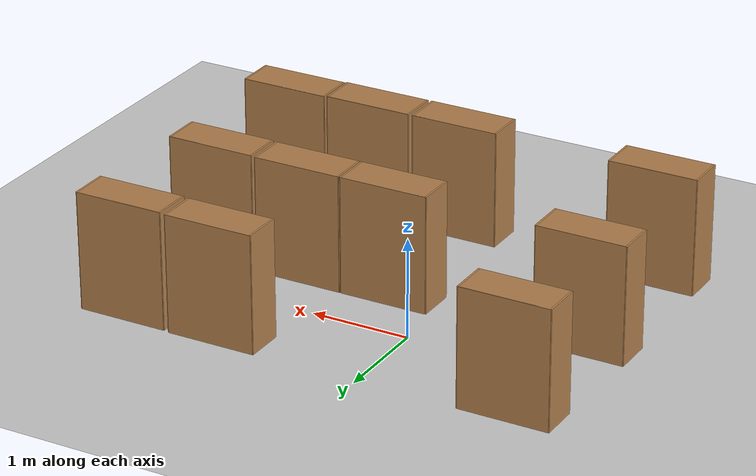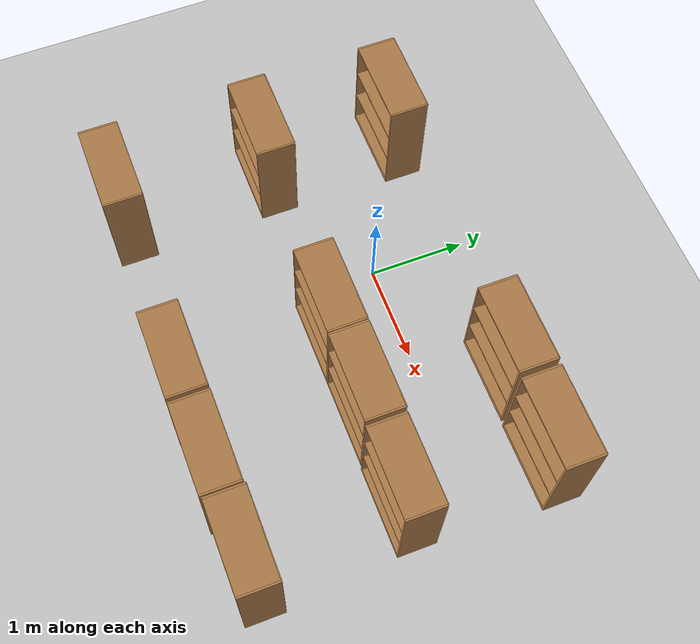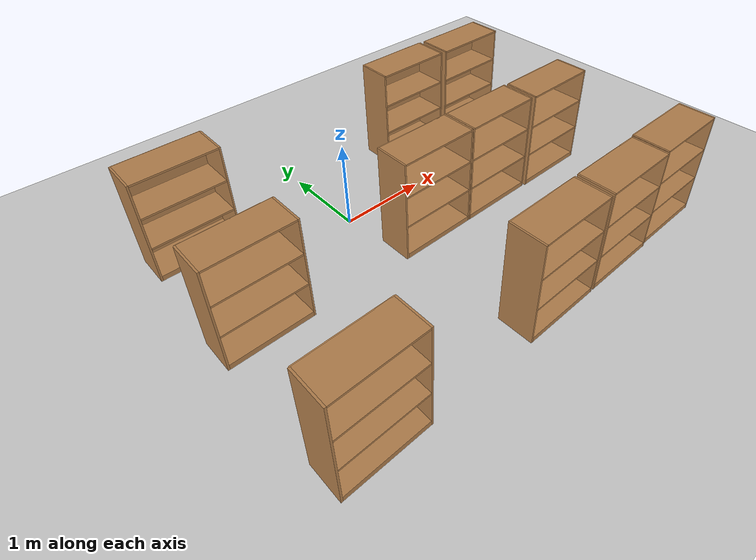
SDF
<sdf version="1.7">
 <world name="default">
  <model name="ground_plane">
   <static>1</static>
   <link name="link">
    <collision name="collision">
     <geometry><plane><normal>0 0 1</normal><size>100 100</size></plane></geometry>
     <surface>
      <contact><collide_bitmask>65535</collide_bitmask></contact>
      <friction><ode><mu>100</mu><mu2>50</mu2></ode></friction>
     </surface>
    </collision>
    <visual name="visual">
     <cast_shadows>0</cast_shadows>
     <geometry><plane><normal>0 0 1</normal><size>100 100</size></plane></geometry>
     <material>
      <script><uri>file://media/materials/scripts/gazebo.material</uri><name>Gazebo/Grey</name></script>
     </material>
    </visual>
   </link>
  </model>
  <model name="bookshelf_13">
   <static>1</static>
   <link name="link">
    <inertial><mass>1</mass></inertial>
    <collision name="back">
     <pose>0 0.005 0.6 0 -0 0</pose>
     <geometry><box><size>0.9 0.01 1.2</size></box></geometry>
    </collision>
    <visual name="visual1">
     <pose>0 0.005 0.6 0 -0 0</pose>
     <geometry><box><size>0.9 0.01 1.2</size></box></geometry>
     <material>
      <script><uri>file://media/materials/scripts/gazebo.material</uri><name>Gazebo/Wood</name></script>
     </material>
    </visual>
    <collision name="left_side">
     <pose>0.45 -0.195 0.6 0 -0 0</pose>
     <geometry><box><size>0.02 0.4 1.2</size></box></geometry>
    </collision>
    <visual name="visual2">
     <pose>0.45 -0.195 0.6 0 -0 0</pose>
     <geometry><box><size>0.02 0.4 1.2</size></box></geometry>
     <material>
      <script><uri>file://media/materials/scripts/gazebo.material</uri><name>Gazebo/Wood</name></script>
     </material>
    </visual>
    <collision name="right_side">
     <pose>-0.45 -0.195 0.6 0 -0 0</pose>
     <geometry><box><size>0.02 0.4 1.2</size></box></geometry>
    </collision>
    <visual name="visual3">
     <pose>-0.45 -0.195 0.6 0 -0 0</pose>
     <geometry><box><size>0.02 0.4 1.2</size></box></geometry>
     <material>
      <script><uri>file://media/materials/scripts/gazebo.material</uri><name>Gazebo/Wood</name></script>
     </material>
    </visual>
    <collision name="bottom">
     <pose>0 -0.195 0.03 0 -0 0</pose>
     <geometry><box><size>0.88 0.4 0.06</size></box></geometry>
    </collision>
    <visual name="visual4">
     <pose>0 -0.195 0.03 0 -0 0</pose>
     <geometry><box><size>0.88 0.4 0.06</size></box></geometry>
     <material>
      <script><uri>file://media/materials/scripts/gazebo.material</uri><name>Gazebo/Wood</name></script>
     </material>
    </visual>
    <collision name="top">
     <pose>0 -0.195 1.19 0 -0 0</pose>
     <geometry><box><size>0.88 0.4 0.02</size></box></geometry>
    </collision>
    <visual name="visual5">
     <pose>0 -0.195 1.19 0 -0 0</pose>
     <geometry><box><size>0.88 0.4 0.02</size></box></geometry>
     <material>
      <script><uri>file://media/materials/scripts/gazebo.material</uri><name>Gazebo/Wood</name></script>
     </material>
    </visual>
    <collision name="low_shelf">
     <pose>0 -0.195 0.43 0 -0 0</pose>
     <geometry><box><size>0.88 0.4 0.02</size></box></geometry>
    </collision>
    <visual name="visual6">
     <pose>0 -0.195 0.43 0 -0 0</pose>
     <geometry><box><size>0.88 0.4 0.02</size></box></geometry>
     <material>
      <script><uri>file://media/materials/scripts/gazebo.material</uri><name>Gazebo/Wood</name></script>
     </material>
    </visual>
    <collision name="high_shelf">
     <pose>0 -0.195 0.8 0 -0 0</pose>
     <geometry><box><size>0.88 0.4 0.02</size></box></geometry>
    </collision>
    <visual name="visual7">
     <pose>0 -0.195 0.8 0 -0 0</pose>
     <geometry><box><size>0.88 0.4 0.02</size></box></geometry>
     <material>
      <script><uri>file://media/materials/scripts/gazebo.material</uri><name>Gazebo/Wood</name></script>
     </material>
    </visual>
   </link>
   <pose>-1.47176 0.953052 0 0 -0 0</pose>
  </model>
  <model name="bookshelf_15">
   <static>1</static>
   <link name="link">
    <inertial><mass>1</mass></inertial>
    <collision name="back">
     <pose>0 0.005 0.6 0 -0 0</pose>
     <geometry><box><size>0.9 0.01 1.2</size></box></geometry>
    </collision>
    <visual name="visual1">
     <pose>0 0.005 0.6 0 -0 0</pose>
     <geometry><box><size>0.9 0.01 1.2</size></box></geometry>
     <material>
      <script><uri>file://media/materials/scripts/gazebo.material</uri><name>Gazebo/Wood</name></script>
     </material>
    </visual>
    <collision name="left_side">
     <pose>0.45 -0.195 0.6 0 -0 0</pose>
     <geometry><box><size>0.02 0.4 1.2</size></box></geometry>
    </collision>
    <visual name="visual2">
     <pose>0.45 -0.195 0.6 0 -0 0</pose>
     <geometry><box><size>0.02 0.4 1.2</size></box></geometry>
     <material>
      <script><uri>file://media/materials/scripts/gazebo.material</uri><name>Gazebo/Wood</name></script>
     </material>
    </visual>
    <collision name="right_side">
     <pose>-0.45 -0.195 0.6 0 -0 0</pose>
     <geometry><box><size>0.02 0.4 1.2</size></box></geometry>
    </collision>
    <visual name="visual3">
     <pose>-0.45 -0.195 0.6 0 -0 0</pose>
     <geometry><box><size>0.02 0.4 1.2</size></box></geometry>
     <material>
      <script><uri>file://media/materials/scripts/gazebo.material</uri><name>Gazebo/Wood</name></script>
     </material>
    </visual>
    <collision name="bottom">
     <pose>0 -0.195 0.03 0 -0 0</pose>
     <geometry><box><size>0.88 0.4 0.06</size></box></geometry>
    </collision>
    <visual name="visual4">
     <pose>0 -0.195 0.03 0 -0 0</pose>
     <geometry><box><size>0.88 0.4 0.06</size></box></geometry>
     <material>
      <script><uri>file://media/materials/scripts/gazebo.material</uri><name>Gazebo/Wood</name></script>
     </material>
    </visual>
    <collision name="top">
     <pose>0 -0.195 1.19 0 -0 0</pose>
     <geometry><box><size>0.88 0.4 0.02</size></box></geometry>
    </collision>
    <visual name="visual5">
     <pose>0 -0.195 1.19 0 -0 0</pose>
     <geometry><box><size>0.88 0.4 0.02</size></box></geometry>
     <material>
      <script><uri>file://media/materials/scripts/gazebo.material</uri><name>Gazebo/Wood</name></script>
     </material>
    </visual>
    <collision name="low_shelf">
     <pose>0 -0.195 0.43 0 -0 0</pose>
     <geometry><box><size>0.88 0.4 0.02</size></box></geometry>
    </collision>
    <visual name="visual6">
     <pose>0 -0.195 0.43 0 -0 0</pose>
     <geometry><box><size>0.88 0.4 0.02</size></box></geometry>
     <material>
      <script><uri>file://media/materials/scripts/gazebo.material</uri><name>Gazebo/Wood</name></script>
     </material>
    </visual>
    <collision name="high_shelf">
     <pose>0 -0.195 0.8 0 -0 0</pose>
     <geometry><box><size>0.88 0.4 0.02</size></box></geometry>
    </collision>
    <visual name="visual7">
     <pose>0 -0.195 0.8 0 -0 0</pose>
     <geometry><box><size>0.88 0.4 0.02</size></box></geometry>
     <material>
      <script><uri>file://media/materials/scripts/gazebo.material</uri><name>Gazebo/Wood</name></script>
     </material>
    </visual>
   </link>
   <pose>1.51844 0.970182 0 0 -0 0</pose>
  </model>
  <model name="bookshelf_16">
   <static>1</static>
   <link name="link">
    <inertial><mass>1</mass></inertial>
    <collision name="back">
     <pose>0 0.005 0.6 0 -0 0</pose>
     <geometry><box><size>0.9 0.01 1.2</size></box></geometry>
    </collision>
    <visual name="visual1">
     <pose>0 0.005 0.6 0 -0 0</pose>
     <geometry><box><size>0.9 0.01 1.2</size></box></geometry>
     <material>
      <script><uri>file://media/materials/scripts/gazebo.material</uri><name>Gazebo/Wood</name></script>
     </material>
    </visual>
    <collision name="left_side">
     <pose>0.45 -0.195 0.6 0 -0 0</pose>
     <geometry><box><size>0.02 0.4 1.2</size></box></geometry>
    </collision>
    <visual name="visual2">
     <pose>0.45 -0.195 0.6 0 -0 0</pose>
     <geometry><box><size>0.02 0.4 1.2</size></box></geometry>
     <material>
      <script><uri>file://media/materials/scripts/gazebo.material</uri><name>Gazebo/Wood</name></script>
     </material>
    </visual>
    <collision name="right_side">
     <pose>-0.45 -0.195 0.6 0 -0 0</pose>
     <geometry><box><size>0.02 0.4 1.2</size></box></geometry>
    </collision>
    <visual name="visual3">
     <pose>-0.45 -0.195 0.6 0 -0 0</pose>
     <geometry><box><size>0.02 0.4 1.2</size></box></geometry>
     <material>
      <script><uri>file://media/materials/scripts/gazebo.material</uri><name>Gazebo/Wood</name></script>
     </material>
    </visual>
    <collision name="bottom">
     <pose>0 -0.195 0.03 0 -0 0</pose>
     <geometry><box><size>0.88 0.4 0.06</size></box></geometry>
    </collision>
    <visual name="visual4">
     <pose>0 -0.195 0.03 0 -0 0</pose>
     <geometry><box><size>0.88 0.4 0.06</size></box></geometry>
     <material>
      <script><uri>file://media/materials/scripts/gazebo.material</uri><name>Gazebo/Wood</name></script>
     </material>
    </visual>
    <collision name="top">
     <pose>0 -0.195 1.19 0 -0 0</pose>
     <geometry><box><size>0.88 0.4 0.02</size></box></geometry>
    </collision>
    <visual name="visual5">
     <pose>0 -0.195 1.19 0 -0 0</pose>
     <geometry><box><size>0.88 0.4 0.02</size></box></geometry>
     <material>
      <script><uri>file://media/materials/scripts/gazebo.material</uri><name>Gazebo/Wood</name></script>
     </material>
    </visual>
    <collision name="low_shelf">
     <pose>0 -0.195 0.43 0 -0 0</pose>
     <geometry><box><size>0.88 0.4 0.02</size></box></geometry>
    </collision>
    <visual name="visual6">
     <pose>0 -0.195 0.43 0 -0 0</pose>
     <geometry><box><size>0.88 0.4 0.02</size></box></geometry>
     <material>
      <script><uri>file://media/materials/scripts/gazebo.material</uri><name>Gazebo/Wood</name></script>
     </material>
    </visual>
    <collision name="high_shelf">
     <pose>0 -0.195 0.8 0 -0 0</pose>
     <geometry><box><size>0.88 0.4 0.02</size></box></geometry>
    </collision>
    <visual name="visual7">
     <pose>0 -0.195 0.8 0 -0 0</pose>
     <geometry><box><size>0.88 0.4 0.02</size></box></geometry>
     <material>
      <script><uri>file://media/materials/scripts/gazebo.material</uri><name>Gazebo/Wood</name></script>
     </material>
    </visual>
   </link>
   <pose>2.48494 0.958079 0 0 -0 0</pose>
  </model>
  <model name="bookshelf_19">
   <static>1</static>
   <link name="link">
    <inertial><mass>1</mass></inertial>
    <collision name="back">
     <pose>0 0.005 0.6 0 -0 0</pose>
     <geometry><box><size>0.9 0.01 1.2</size></box></geometry>
    </collision>
    <visual name="visual1">
     <pose>0 0.005 0.6 0 -0 0</pose>
     <geometry><box><size>0.9 0.01 1.2</size></box></geometry>
     <material>
      <script><uri>file://media/materials/scripts/gazebo.material</uri><name>Gazebo/Wood</name></script>
     </material>
    </visual>
    <collision name="left_side">
     <pose>0.45 -0.195 0.6 0 -0 0</pose>
     <geometry><box><size>0.02 0.4 1.2</size></box></geometry>
    </collision>
    <visual name="visual2">
     <pose>0.45 -0.195 0.6 0 -0 0</pose>
     <geometry><box><size>0.02 0.4 1.2</size></box></geometry>
     <material>
      <script><uri>file://media/materials/scripts/gazebo.material</uri><name>Gazebo/Wood</name></script>
     </material>
    </visual>
    <collision name="right_side">
     <pose>-0.45 -0.195 0.6 0 -0 0</pose>
     <geometry><box><size>0.02 0.4 1.2</size></box></geometry>
    </collision>
    <visual name="visual3">
     <pose>-0.45 -0.195 0.6 0 -0 0</pose>
     <geometry><box><size>0.02 0.4 1.2</size></box></geometry>
     <material>
      <script><uri>file://media/materials/scripts/gazebo.material</uri><name>Gazebo/Wood</name></script>
     </material>
    </visual>
    <collision name="bottom">
     <pose>0 -0.195 0.03 0 -0 0</pose>
     <geometry><box><size>0.88 0.4 0.06</size></box></geometry>
    </collision>
    <visual name="visual4">
     <pose>0 -0.195 0.03 0 -0 0</pose>
     <geometry><box><size>0.88 0.4 0.06</size></box></geometry>
     <material>
      <script><uri>file://media/materials/scripts/gazebo.material</uri><name>Gazebo/Wood</name></script>
     </material>
    </visual>
    <collision name="top">
     <pose>0 -0.195 1.19 0 -0 0</pose>
     <geometry><box><size>0.88 0.4 0.02</size></box></geometry>
    </collision>
    <visual name="visual5">
     <pose>0 -0.195 1.19 0 -0 0</pose>
     <geometry><box><size>0.88 0.4 0.02</size></box></geometry>
     <material>
      <script><uri>file://media/materials/scripts/gazebo.material</uri><name>Gazebo/Wood</name></script>
     </material>
    </visual>
    <collision name="low_shelf">
     <pose>0 -0.195 0.43 0 -0 0</pose>
     <geometry><box><size>0.88 0.4 0.02</size></box></geometry>
    </collision>
    <visual name="visual6">
     <pose>0 -0.195 0.43 0 -0 0</pose>
     <geometry><box><size>0.88 0.4 0.02</size></box></geometry>
     <material>
      <script><uri>file://media/materials/scripts/gazebo.material</uri><name>Gazebo/Wood</name></script>
     </material>
    </visual>
    <collision name="high_shelf">
     <pose>0 -0.195 0.8 0 -0 0</pose>
     <geometry><box><size>0.88 0.4 0.02</size></box></geometry>
    </collision>
    <visual name="visual7">
     <pose>0 -0.195 0.8 0 -0 0</pose>
     <geometry><box><size>0.88 0.4 0.02</size></box></geometry>
     <material>
      <script><uri>file://media/materials/scripts/gazebo.material</uri><name>Gazebo/Wood</name></script>
     </material>
    </visual>
   </link>
   <pose>-1.50921 -0.459183 0 0 -0 0</pose>
  </model>
  <model name="bookshelf_20">
   <static>1</static>
   <link name="link">
    <inertial><mass>1</mass></inertial>
    <collision name="back">
     <pose>0 0.005 0.6 0 -0 0</pose>
     <geometry><box><size>0.9 0.01 1.2</size></box></geometry>
    </collision>
    <visual name="visual1">
     <pose>0 0.005 0.6 0 -0 0</pose>
     <geometry><box><size>0.9 0.01 1.2</size></box></geometry>
     <material>
      <script><uri>file://media/materials/scripts/gazebo.material</uri><name>Gazebo/Wood</name></script>
     </material>
    </visual>
    <collision name="left_side">
     <pose>0.45 -0.195 0.6 0 -0 0</pose>
     <geometry><box><size>0.02 0.4 1.2</size></box></geometry>
    </collision>
    <visual name="visual2">
     <pose>0.45 -0.195 0.6 0 -0 0</pose>
     <geometry><box><size>0.02 0.4 1.2</size></box></geometry>
     <material>
      <script><uri>file://media/materials/scripts/gazebo.material</uri><name>Gazebo/Wood</name></script>
     </material>
    </visual>
    <collision name="right_side">
     <pose>-0.45 -0.195 0.6 0 -0 0</pose>
     <geometry><box><size>0.02 0.4 1.2</size></box></geometry>
    </collision>
    <visual name="visual3">
     <pose>-0.45 -0.195 0.6 0 -0 0</pose>
     <geometry><box><size>0.02 0.4 1.2</size></box></geometry>
     <material>
      <script><uri>file://media/materials/scripts/gazebo.material</uri><name>Gazebo/Wood</name></script>
     </material>
    </visual>
    <collision name="bottom">
     <pose>0 -0.195 0.03 0 -0 0</pose>
     <geometry><box><size>0.88 0.4 0.06</size></box></geometry>
    </collision>
    <visual name="visual4">
     <pose>0 -0.195 0.03 0 -0 0</pose>
     <geometry><box><size>0.88 0.4 0.06</size></box></geometry>
     <material>
      <script><uri>file://media/materials/scripts/gazebo.material</uri><name>Gazebo/Wood</name></script>
     </material>
    </visual>
    <collision name="top">
     <pose>0 -0.195 1.19 0 -0 0</pose>
     <geometry><box><size>0.88 0.4 0.02</size></box></geometry>
    </collision>
    <visual name="visual5">
     <pose>0 -0.195 1.19 0 -0 0</pose>
     <geometry><box><size>0.88 0.4 0.02</size></box></geometry>
     <material>
      <script><uri>file://media/materials/scripts/gazebo.material</uri><name>Gazebo/Wood</name></script>
     </material>
    </visual>
    <collision name="low_shelf">
     <pose>0 -0.195 0.43 0 -0 0</pose>
     <geometry><box><size>0.88 0.4 0.02</size></box></geometry>
    </collision>
    <visual name="visual6">
     <pose>0 -0.195 0.43 0 -0 0</pose>
     <geometry><box><size>0.88 0.4 0.02</size></box></geometry>
     <material>
      <script><uri>file://media/materials/scripts/gazebo.material</uri><name>Gazebo/Wood</name></script>
     </material>
    </visual>
    <collision name="high_shelf">
     <pose>0 -0.195 0.8 0 -0 0</pose>
     <geometry><box><size>0.88 0.4 0.02</size></box></geometry>
    </collision>
    <visual name="visual7">
     <pose>0 -0.195 0.8 0 -0 0</pose>
     <geometry><box><size>0.88 0.4 0.02</size></box></geometry>
     <material>
      <script><uri>file://media/materials/scripts/gazebo.material</uri><name>Gazebo/Wood</name></script>
     </material>
    </visual>
   </link>
   <pose>0.536006 -0.494316 0 0 -0 0</pose>
  </model>
  <model name="bookshelf_21">
   <static>1</static>
   <link name="link">
    <inertial><mass>1</mass></inertial>
    <collision name="back">
     <pose>0 0.005 0.6 0 -0 0</pose>
     <geometry><box><size>0.9 0.01 1.2</size></box></geometry>
    </collision>
    <visual name="visual1">
     <pose>0 0.005 0.6 0 -0 0</pose>
     <geometry><box><size>0.9 0.01 1.2</size></box></geometry>
     <material>
      <script><uri>file://media/materials/scripts/gazebo.material</uri><name>Gazebo/Wood</name></script>
     </material>
    </visual>
    <collision name="left_side">
     <pose>0.45 -0.195 0.6 0 -0 0</pose>
     <geometry><box><size>0.02 0.4 1.2</size></box></geometry>
    </collision>
    <visual name="visual2">
     <pose>0.45 -0.195 0.6 0 -0 0</pose>
     <geometry><box><size>0.02 0.4 1.2</size></box></geometry>
     <material>
      <script><uri>file://media/materials/scripts/gazebo.material</uri><name>Gazebo/Wood</name></script>
     </material>
    </visual>
    <collision name="right_side">
     <pose>-0.45 -0.195 0.6 0 -0 0</pose>
     <geometry><box><size>0.02 0.4 1.2</size></box></geometry>
    </collision>
    <visual name="visual3">
     <pose>-0.45 -0.195 0.6 0 -0 0</pose>
     <geometry><box><size>0.02 0.4 1.2</size></box></geometry>
     <material>
      <script><uri>file://media/materials/scripts/gazebo.material</uri><name>Gazebo/Wood</name></script>
     </material>
    </visual>
    <collision name="bottom">
     <pose>0 -0.195 0.03 0 -0 0</pose>
     <geometry><box><size>0.88 0.4 0.06</size></box></geometry>
    </collision>
    <visual name="visual4">
     <pose>0 -0.195 0.03 0 -0 0</pose>
     <geometry><box><size>0.88 0.4 0.06</size></box></geometry>
     <material>
      <script><uri>file://media/materials/scripts/gazebo.material</uri><name>Gazebo/Wood</name></script>
     </material>
    </visual>
    <collision name="top">
     <pose>0 -0.195 1.19 0 -0 0</pose>
     <geometry><box><size>0.88 0.4 0.02</size></box></geometry>
    </collision>
    <visual name="visual5">
     <pose>0 -0.195 1.19 0 -0 0</pose>
     <geometry><box><size>0.88 0.4 0.02</size></box></geometry>
     <material>
      <script><uri>file://media/materials/scripts/gazebo.material</uri><name>Gazebo/Wood</name></script>
     </material>
    </visual>
    <collision name="low_shelf">
     <pose>0 -0.195 0.43 0 -0 0</pose>
     <geometry><box><size>0.88 0.4 0.02</size></box></geometry>
    </collision>
    <visual name="visual6">
     <pose>0 -0.195 0.43 0 -0 0</pose>
     <geometry><box><size>0.88 0.4 0.02</size></box></geometry>
     <material>
      <script><uri>file://media/materials/scripts/gazebo.material</uri><name>Gazebo/Wood</name></script>
     </material>
    </visual>
    <collision name="high_shelf">
     <pose>0 -0.195 0.8 0 -0 0</pose>
     <geometry><box><size>0.88 0.4 0.02</size></box></geometry>
    </collision>
    <visual name="visual7">
     <pose>0 -0.195 0.8 0 -0 0</pose>
     <geometry><box><size>0.88 0.4 0.02</size></box></geometry>
     <material>
      <script><uri>file://media/materials/scripts/gazebo.material</uri><name>Gazebo/Wood</name></script>
     </material>
    </visual>
   </link>
   <pose>1.46034 -0.494976 0 0 -0 0</pose>
  </model>
  <model name="bookshelf_22">
   <static>1</static>
   <link name="link">
    <inertial><mass>1</mass></inertial>
    <collision name="back">
     <pose>0 0.005 0.6 0 -0 0</pose>
     <geometry><box><size>0.9 0.01 1.2</size></box></geometry>
    </collision>
    <visual name="visual1">
     <pose>0 0.005 0.6 0 -0 0</pose>
     <geometry><box><size>0.9 0.01 1.2</size></box></geometry>
     <material>
      <script><uri>file://media/materials/scripts/gazebo.material</uri><name>Gazebo/Wood</name></script>
     </material>
    </visual>
    <collision name="left_side">
     <pose>0.45 -0.195 0.6 0 -0 0</pose>
     <geometry><box><size>0.02 0.4 1.2</size></box></geometry>
    </collision>
    <visual name="visual2">
     <pose>0.45 -0.195 0.6 0 -0 0</pose>
     <geometry><box><size>0.02 0.4 1.2</size></box></geometry>
     <material>
      <script><uri>file://media/materials/scripts/gazebo.material</uri><name>Gazebo/Wood</name></script>
     </material>
    </visual>
    <collision name="right_side">
     <pose>-0.45 -0.195 0.6 0 -0 0</pose>
     <geometry><box><size>0.02 0.4 1.2</size></box></geometry>
    </collision>
    <visual name="visual3">
     <pose>-0.45 -0.195 0.6 0 -0 0</pose>
     <geometry><box><size>0.02 0.4 1.2</size></box></geometry>
     <material>
      <script><uri>file://media/materials/scripts/gazebo.material</uri><name>Gazebo/Wood</name></script>
     </material>
    </visual>
    <collision name="bottom">
     <pose>0 -0.195 0.03 0 -0 0</pose>
     <geometry><box><size>0.88 0.4 0.06</size></box></geometry>
    </collision>
    <visual name="visual4">
     <pose>0 -0.195 0.03 0 -0 0</pose>
     <geometry><box><size>0.88 0.4 0.06</size></box></geometry>
     <material>
      <script><uri>file://media/materials/scripts/gazebo.material</uri><name>Gazebo/Wood</name></script>
     </material>
    </visual>
    <collision name="top">
     <pose>0 -0.195 1.19 0 -0 0</pose>
     <geometry><box><size>0.88 0.4 0.02</size></box></geometry>
    </collision>
    <visual name="visual5">
     <pose>0 -0.195 1.19 0 -0 0</pose>
     <geometry><box><size>0.88 0.4 0.02</size></box></geometry>
     <material>
      <script><uri>file://media/materials/scripts/gazebo.material</uri><name>Gazebo/Wood</name></script>
     </material>
    </visual>
    <collision name="low_shelf">
     <pose>0 -0.195 0.43 0 -0 0</pose>
     <geometry><box><size>0.88 0.4 0.02</size></box></geometry>
    </collision>
    <visual name="visual6">
     <pose>0 -0.195 0.43 0 -0 0</pose>
     <geometry><box><size>0.88 0.4 0.02</size></box></geometry>
     <material>
      <script><uri>file://media/materials/scripts/gazebo.material</uri><name>Gazebo/Wood</name></script>
     </material>
    </visual>
    <collision name="high_shelf">
     <pose>0 -0.195 0.8 0 -0 0</pose>
     <geometry><box><size>0.88 0.4 0.02</size></box></geometry>
    </collision>
    <visual name="visual7">
     <pose>0 -0.195 0.8 0 -0 0</pose>
     <geometry><box><size>0.88 0.4 0.02</size></box></geometry>
     <material>
      <script><uri>file://media/materials/scripts/gazebo.material</uri><name>Gazebo/Wood</name></script>
     </material>
    </visual>
   </link>
   <pose>2.41459 -0.508292 0 0 -0 0</pose>
  </model>
  <model name="bookshelf_23">
   <static>1</static>
   <link name="link">
    <inertial><mass>1</mass></inertial>
    <collision name="back">
     <pose>0 0.005 0.6 0 -0 0</pose>
     <geometry><box><size>0.9 0.01 1.2</size></box></geometry>
    </collision>
    <visual name="visual1">
     <pose>0 0.005 0.6 0 -0 0</pose>
     <geometry><box><size>0.9 0.01 1.2</size></box></geometry>
     <material>
      <script><uri>file://media/materials/scripts/gazebo.material</uri><name>Gazebo/Wood</name></script>
     </material>
    </visual>
    <collision name="left_side">
     <pose>0.45 -0.195 0.6 0 -0 0</pose>
     <geometry><box><size>0.02 0.4 1.2</size></box></geometry>
    </collision>
    <visual name="visual2">
     <pose>0.45 -0.195 0.6 0 -0 0</pose>
     <geometry><box><size>0.02 0.4 1.2</size></box></geometry>
     <material>
      <script><uri>file://media/materials/scripts/gazebo.material</uri><name>Gazebo/Wood</name></script>
     </material>
    </visual>
    <collision name="right_side">
     <pose>-0.45 -0.195 0.6 0 -0 0</pose>
     <geometry><box><size>0.02 0.4 1.2</size></box></geometry>
    </collision>
    <visual name="visual3">
     <pose>-0.45 -0.195 0.6 0 -0 0</pose>
     <geometry><box><size>0.02 0.4 1.2</size></box></geometry>
     <material>
      <script><uri>file://media/materials/scripts/gazebo.material</uri><name>Gazebo/Wood</name></script>
     </material>
    </visual>
    <collision name="bottom">
     <pose>0 -0.195 0.03 0 -0 0</pose>
     <geometry><box><size>0.88 0.4 0.06</size></box></geometry>
    </collision>
    <visual name="visual4">
     <pose>0 -0.195 0.03 0 -0 0</pose>
     <geometry><box><size>0.88 0.4 0.06</size></box></geometry>
     <material>
      <script><uri>file://media/materials/scripts/gazebo.material</uri><name>Gazebo/Wood</name></script>
     </material>
    </visual>
    <collision name="top">
     <pose>0 -0.195 1.19 0 -0 0</pose>
     <geometry><box><size>0.88 0.4 0.02</size></box></geometry>
    </collision>
    <visual name="visual5">
     <pose>0 -0.195 1.19 0 -0 0</pose>
     <geometry><box><size>0.88 0.4 0.02</size></box></geometry>
     <material>
      <script><uri>file://media/materials/scripts/gazebo.material</uri><name>Gazebo/Wood</name></script>
     </material>
    </visual>
    <collision name="low_shelf">
     <pose>0 -0.195 0.43 0 -0 0</pose>
     <geometry><box><size>0.88 0.4 0.02</size></box></geometry>
    </collision>
    <visual name="visual6">
     <pose>0 -0.195 0.43 0 -0 0</pose>
     <geometry><box><size>0.88 0.4 0.02</size></box></geometry>
     <material>
      <script><uri>file://media/materials/scripts/gazebo.material</uri><name>Gazebo/Wood</name></script>
     </material>
    </visual>
    <collision name="high_shelf">
     <pose>0 -0.195 0.8 0 -0 0</pose>
     <geometry><box><size>0.88 0.4 0.02</size></box></geometry>
    </collision>
    <visual name="visual7">
     <pose>0 -0.195 0.8 0 -0 0</pose>
     <geometry><box><size>0.88 0.4 0.02</size></box></geometry>
     <material>
      <script><uri>file://media/materials/scripts/gazebo.material</uri><name>Gazebo/Wood</name></script>
     </material>
    </visual>
   </link>
   <pose>2.52013 -2.04898 0 0 -0 0</pose>
  </model>
  <model name="bookshelf_24">
   <static>1</static>
   <link name="link">
    <inertial><mass>1</mass></inertial>
    <collision name="back">
     <pose>0 0.005 0.6 0 -0 0</pose>
     <geometry><box><size>0.9 0.01 1.2</size></box></geometry>
    </collision>
    <visual name="visual1">
     <pose>0 0.005 0.6 0 -0 0</pose>
     <geometry><box><size>0.9 0.01 1.2</size></box></geometry>
     <material>
      <script><uri>file://media/materials/scripts/gazebo.material</uri><name>Gazebo/Wood</name></script>
     </material>
    </visual>
    <collision name="left_side">
     <pose>0.45 -0.195 0.6 0 -0 0</pose>
     <geometry><box><size>0.02 0.4 1.2</size></box></geometry>
    </collision>
    <visual name="visual2">
     <pose>0.45 -0.195 0.6 0 -0 0</pose>
     <geometry><box><size>0.02 0.4 1.2</size></box></geometry>
     <material>
      <script><uri>file://media/materials/scripts/gazebo.material</uri><name>Gazebo/Wood</name></script>
     </material>
    </visual>
    <collision name="right_side">
     <pose>-0.45 -0.195 0.6 0 -0 0</pose>
     <geometry><box><size>0.02 0.4 1.2</size></box></geometry>
    </collision>
    <visual name="visual3">
     <pose>-0.45 -0.195 0.6 0 -0 0</pose>
     <geometry><box><size>0.02 0.4 1.2</size></box></geometry>
     <material>
      <script><uri>file://media/materials/scripts/gazebo.material</uri><name>Gazebo/Wood</name></script>
     </material>
    </visual>
    <collision name="bottom">
     <pose>0 -0.195 0.03 0 -0 0</pose>
     <geometry><box><size>0.88 0.4 0.06</size></box></geometry>
    </collision>
    <visual name="visual4">
     <pose>0 -0.195 0.03 0 -0 0</pose>
     <geometry><box><size>0.88 0.4 0.06</size></box></geometry>
     <material>
      <script><uri>file://media/materials/scripts/gazebo.material</uri><name>Gazebo/Wood</name></script>
     </material>
    </visual>
    <collision name="top">
     <pose>0 -0.195 1.19 0 -0 0</pose>
     <geometry><box><size>0.88 0.4 0.02</size></box></geometry>
    </collision>
    <visual name="visual5">
     <pose>0 -0.195 1.19 0 -0 0</pose>
     <geometry><box><size>0.88 0.4 0.02</size></box></geometry>
     <material>
      <script><uri>file://media/materials/scripts/gazebo.material</uri><name>Gazebo/Wood</name></script>
     </material>
    </visual>
    <collision name="low_shelf">
     <pose>0 -0.195 0.43 0 -0 0</pose>
     <geometry><box><size>0.88 0.4 0.02</size></box></geometry>
    </collision>
    <visual name="visual6">
     <pose>0 -0.195 0.43 0 -0 0</pose>
     <geometry><box><size>0.88 0.4 0.02</size></box></geometry>
     <material>
      <script><uri>file://media/materials/scripts/gazebo.material</uri><name>Gazebo/Wood</name></script>
     </material>
    </visual>
    <collision name="high_shelf">
     <pose>0 -0.195 0.8 0 -0 0</pose>
     <geometry><box><size>0.88 0.4 0.02</size></box></geometry>
    </collision>
    <visual name="visual7">
     <pose>0 -0.195 0.8 0 -0 0</pose>
     <geometry><box><size>0.88 0.4 0.02</size></box></geometry>
     <material>
      <script><uri>file://media/materials/scripts/gazebo.material</uri><name>Gazebo/Wood</name></script>
     </material>
    </visual>
   </link>
   <pose>1.58936 -2.06574 0 0 -0 0</pose>
  </model>
  <model name="bookshelf_25">
   <static>1</static>
   <link name="link">
    <inertial><mass>1</mass></inertial>
    <collision name="back">
     <pose>0 0.005 0.6 0 -0 0</pose>
     <geometry><box><size>0.9 0.01 1.2</size></box></geometry>
    </collision>
    <visual name="visual1">
     <pose>0 0.005 0.6 0 -0 0</pose>
     <geometry><box><size>0.9 0.01 1.2</size></box></geometry>
     <material>
      <script><uri>file://media/materials/scripts/gazebo.material</uri><name>Gazebo/Wood</name></script>
     </material>
    </visual>
    <collision name="left_side">
     <pose>0.45 -0.195 0.6 0 -0 0</pose>
     <geometry><box><size>0.02 0.4 1.2</size></box></geometry>
    </collision>
    <visual name="visual2">
     <pose>0.45 -0.195 0.6 0 -0 0</pose>
     <geometry><box><size>0.02 0.4 1.2</size></box></geometry>
     <material>
      <script><uri>file://media/materials/scripts/gazebo.material</uri><name>Gazebo/Wood</name></script>
     </material>
    </visual>
    <collision name="right_side">
     <pose>-0.45 -0.195 0.6 0 -0 0</pose>
     <geometry><box><size>0.02 0.4 1.2</size></box></geometry>
    </collision>
    <visual name="visual3">
     <pose>-0.45 -0.195 0.6 0 -0 0</pose>
     <geometry><box><size>0.02 0.4 1.2</size></box></geometry>
     <material>
      <script><uri>file://media/materials/scripts/gazebo.material</uri><name>Gazebo/Wood</name></script>
     </material>
    </visual>
    <collision name="bottom">
     <pose>0 -0.195 0.03 0 -0 0</pose>
     <geometry><box><size>0.88 0.4 0.06</size></box></geometry>
    </collision>
    <visual name="visual4">
     <pose>0 -0.195 0.03 0 -0 0</pose>
     <geometry><box><size>0.88 0.4 0.06</size></box></geometry>
     <material>
      <script><uri>file://media/materials/scripts/gazebo.material</uri><name>Gazebo/Wood</name></script>
     </material>
    </visual>
    <collision name="top">
     <pose>0 -0.195 1.19 0 -0 0</pose>
     <geometry><box><size>0.88 0.4 0.02</size></box></geometry>
    </collision>
    <visual name="visual5">
     <pose>0 -0.195 1.19 0 -0 0</pose>
     <geometry><box><size>0.88 0.4 0.02</size></box></geometry>
     <material>
      <script><uri>file://media/materials/scripts/gazebo.material</uri><name>Gazebo/Wood</name></script>
     </material>
    </visual>
    <collision name="low_shelf">
     <pose>0 -0.195 0.43 0 -0 0</pose>
     <geometry><box><size>0.88 0.4 0.02</size></box></geometry>
    </collision>
    <visual name="visual6">
     <pose>0 -0.195 0.43 0 -0 0</pose>
     <geometry><box><size>0.88 0.4 0.02</size></box></geometry>
     <material>
      <script><uri>file://media/materials/scripts/gazebo.material</uri><name>Gazebo/Wood</name></script>
     </material>
    </visual>
    <collision name="high_shelf">
     <pose>0 -0.195 0.8 0 -0 0</pose>
     <geometry><box><size>0.88 0.4 0.02</size></box></geometry>
    </collision>
    <visual name="visual7">
     <pose>0 -0.195 0.8 0 -0 0</pose>
     <geometry><box><size>0.88 0.4 0.02</size></box></geometry>
     <material>
      <script><uri>file://media/materials/scripts/gazebo.material</uri><name>Gazebo/Wood</name></script>
     </material>
    </visual>
   </link>
   <pose>0.636089 -2.06851 0 0 -0 0</pose>
  </model>
  <model name="bookshelf_26">
   <static>1</static>
   <link name="link">
    <inertial><mass>1</mass></inertial>
    <collision name="back">
     <pose>0 0.005 0.6 0 -0 0</pose>
     <geometry><box><size>0.9 0.01 1.2</size></box></geometry>
    </collision>
    <visual name="visual1">
     <pose>0 0.005 0.6 0 -0 0</pose>
     <geometry><box><size>0.9 0.01 1.2</size></box></geometry>
     <material>
      <script><uri>file://media/materials/scripts/gazebo.material</uri><name>Gazebo/Wood</name></script>
     </material>
    </visual>
    <collision name="left_side">
     <pose>0.45 -0.195 0.6 0 -0 0</pose>
     <geometry><box><size>0.02 0.4 1.2</size></box></geometry>
    </collision>
    <visual name="visual2">
     <pose>0.45 -0.195 0.6 0 -0 0</pose>
     <geometry><box><size>0.02 0.4 1.2</size></box></geometry>
     <material>
      <script><uri>file://media/materials/scripts/gazebo.material</uri><name>Gazebo/Wood</name></script>
     </material>
    </visual>
    <collision name="right_side">
     <pose>-0.45 -0.195 0.6 0 -0 0</pose>
     <geometry><box><size>0.02 0.4 1.2</size></box></geometry>
    </collision>
    <visual name="visual3">
     <pose>-0.45 -0.195 0.6 0 -0 0</pose>
     <geometry><box><size>0.02 0.4 1.2</size></box></geometry>
     <material>
      <script><uri>file://media/materials/scripts/gazebo.material</uri><name>Gazebo/Wood</name></script>
     </material>
    </visual>
    <collision name="bottom">
     <pose>0 -0.195 0.03 0 -0 0</pose>
     <geometry><box><size>0.88 0.4 0.06</size></box></geometry>
    </collision>
    <visual name="visual4">
     <pose>0 -0.195 0.03 0 -0 0</pose>
     <geometry><box><size>0.88 0.4 0.06</size></box></geometry>
     <material>
      <script><uri>file://media/materials/scripts/gazebo.material</uri><name>Gazebo/Wood</name></script>
     </material>
    </visual>
    <collision name="top">
     <pose>0 -0.195 1.19 0 -0 0</pose>
     <geometry><box><size>0.88 0.4 0.02</size></box></geometry>
    </collision>
    <visual name="visual5">
     <pose>0 -0.195 1.19 0 -0 0</pose>
     <geometry><box><size>0.88 0.4 0.02</size></box></geometry>
     <material>
      <script><uri>file://media/materials/scripts/gazebo.material</uri><name>Gazebo/Wood</name></script>
     </material>
    </visual>
    <collision name="low_shelf">
     <pose>0 -0.195 0.43 0 -0 0</pose>
     <geometry><box><size>0.88 0.4 0.02</size></box></geometry>
    </collision>
    <visual name="visual6">
     <pose>0 -0.195 0.43 0 -0 0</pose>
     <geometry><box><size>0.88 0.4 0.02</size></box></geometry>
     <material>
      <script><uri>file://media/materials/scripts/gazebo.material</uri><name>Gazebo/Wood</name></script>
     </material>
    </visual>
    <collision name="high_shelf">
     <pose>0 -0.195 0.8 0 -0 0</pose>
     <geometry><box><size>0.88 0.4 0.02</size></box></geometry>
    </collision>
    <visual name="visual7">
     <pose>0 -0.195 0.8 0 -0 0</pose>
     <geometry><box><size>0.88 0.4 0.02</size></box></geometry>
     <material>
      <script><uri>file://media/materials/scripts/gazebo.material</uri><name>Gazebo/Wood</name></script>
     </material>
    </visual>
   </link>
   <pose>-1.47678 -2.03878 0 0 -0 0</pose>
  </model>
 </world>
</sdf>
